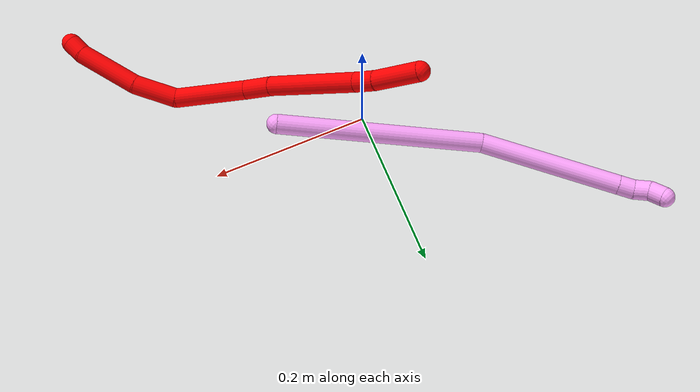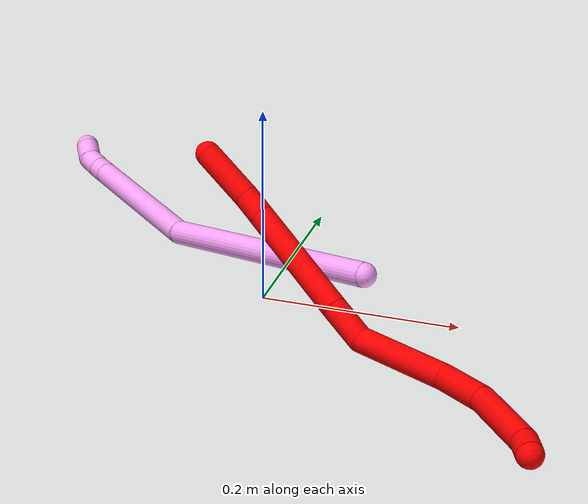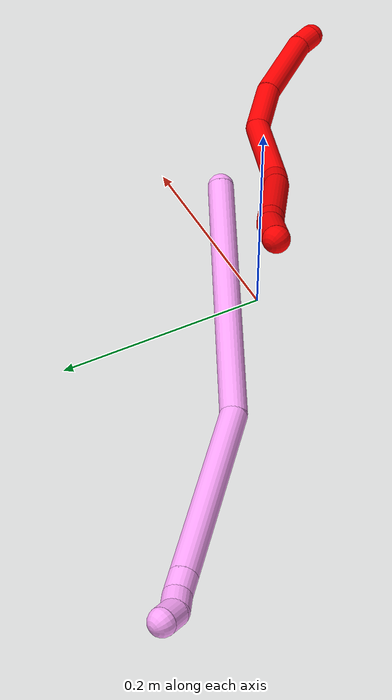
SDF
<sdf version="1.7">
 <world name="default">
  <model name="photoneo_s_sensor">
   <static>1</static>
   <pose>0 0 2 1.57079 1.57079 3.14159</pose>
   <link name="link">
    <inertial><mass>0.1</mass></inertial>
    <sensor name="sensor" type="depth">
     <update_rate>30</update_rate>
     <camera>
      <horizontal_fov>1.22</horizontal_fov>
      <image><width>1920</width><height>1200</height><format>B8G8R8</format></image>
      <clip><near>0.1</near><far>4</far></clip>
      <depth_camera><output>points</output></depth_camera>
     </camera>
     <plugin name="camera_plugin" filename="libgazebo_ros_depth_camera.so">
      <baseline>0.2</baseline>
      <alwaysOn>1</alwaysOn>
      <updateRate>0.0</updateRate>
      <cameraName>camera_ir</cameraName>
      <imageTopicName>/camera/color/image_raw</imageTopicName>
      <cameraInfoTopicName>/camera/color/camera_info</cameraInfoTopicName>
      <depthImageTopicName>/camera/depth/image_raw</depthImageTopicName>
      <depthImageCameraInfoTopicName>/camera/depth/camera_info</depthImageCameraInfoTopicName>
      <pointCloudTopicName>/camera/depth/points</pointCloudTopicName>
      <frameName>fr_optical</frameName>
      <pointCloudCutoff>0.1</pointCloudCutoff>
      <pointCloudCutoffMax>2.0</pointCloudCutoffMax>
      <distortionK1>0</distortionK1>
      <distortionK2>0</distortionK2>
      <distortionK3>0</distortionK3>
      <distortionT1>0</distortionT1>
      <distortionT2>0</distortionT2>
      <CxPrime>0</CxPrime>
      <Cx>0</Cx>
      <Cy>0</Cy>
      <focalLength>0</focalLength>
      <hackBaseline>0</hackBaseline>
     </plugin>
    </sensor>
   </link>
  </model>
  <model name="bin">
   <static>1</static>
   <link name="bottom">
    <collision name="collision-bottom">
     <pose>0 0 -0.01 0 -0 0</pose>
     <geometry><box><size>0.8 0.6 0.02</size></box></geometry>
     <surface>
      <friction><ode><mu>100</mu><mu2>100</mu2></ode></friction>
      <contact><collide_bitmask>65535</collide_bitmask></contact>
     </surface>
    </collision>
   </link>
   <link name="west_wall">
    <collision name="collision-west_wall">
     <pose>-0.41 0 0.1 0 -0 0</pose>
     <geometry><box><size>0.02 0.6 0.2</size></box></geometry>
     <surface>
      <friction><ode><mu>100</mu><mu2>100</mu2></ode></friction>
      <contact><collide_bitmask>65535</collide_bitmask></contact>
     </surface>
    </collision>
   </link>
   <link name="east_wall">
    <collision name="collision-east_wall">
     <pose>0.41 0 0.1 0 -0 0</pose>
     <geometry><box><size>0.02 0.6 0.2</size></box></geometry>
     <surface>
      <friction><ode><mu>100</mu><mu2>100</mu2></ode></friction>
      <contact><collide_bitmask>65535</collide_bitmask></contact>
     </surface>
    </collision>
   </link>
   <link name="south_wall">
    <collision name="collision-south_wall">
     <pose>0 -0.31 0.1 0 -0 0</pose>
     <geometry><box><size>0.8 0.02 0.2</size></box></geometry>
     <surface>
      <friction><ode><mu>100</mu><mu2>100</mu2></ode></friction>
      <contact><collide_bitmask>65535</collide_bitmask></contact>
     </surface>
    </collision>
   </link>
   <link name="north_wall">
    <collision name="collision-north_wall">
     <pose>0 0.31 0.1 0 -0 0</pose>
     <geometry><box><size>0.8 0.02 0.2</size></box></geometry>
     <surface>
      <friction><ode><mu>100</mu><mu2>100</mu2></ode></friction>
      <contact><collide_bitmask>65535</collide_bitmask></contact>
     </surface>
    </collision>
   </link>
  </model>
  <model name="2">
   <static>0</static>
   <link name="2">
    <collision name="collision-cylinder-e_1_1_4">
     <pose>0.000207 -0.000899 -0.010814 3.05861 0.019089 0.451964</pose>
     <geometry><cylinder><radius>0.0125</radius><length>0.021707</length></cylinder></geometry>
     <surface>
      <friction><ode><mu>1.16</mu><mu2>1.16</mu2><slip1>0</slip1><slip2>0</slip2></ode></friction>
      <contact><ode><kp>1e+06</kp><kd>1</kd><max_vel>0</max_vel><min_depth>0.001</min_depth></ode></contact>
     </surface>
    </collision>
    <visual name="visual-cylinder-e_1_1_4">
     <pose>0.000207 -0.000899 -0.010814 3.05861 0.019089 0.451964</pose>
     <geometry><cylinder><radius>0.0125</radius><length>0.021707</length></cylinder></geometry>
     <material><ambient>1 0 0 1</ambient></material>
    </visual>
    <collision name="collision-cylinder-e_2_4_5">
     <pose>-0.007591 2.9e-05 -0.06159 -3.09588 -0.197515 2.68808</pose>
     <geometry><cylinder><radius>0.0125</radius><length>0.081594</length></cylinder></geometry>
     <surface>
      <friction><ode><mu>1.16</mu><mu2>1.16</mu2><slip1>0</slip1><slip2>0</slip2></ode></friction>
      <contact><ode><kp>1e+06</kp><kd>1</kd><max_vel>0</max_vel><min_depth>0.001</min_depth></ode></contact>
     </surface>
    </collision>
    <visual name="visual-cylinder-e_2_4_5">
     <pose>-0.007591 2.9e-05 -0.06159 -3.09588 -0.197515 2.68808</pose>
     <geometry><cylinder><radius>0.0125</radius><length>0.081594</length></cylinder></geometry>
     <material><ambient>1 0 0 1</ambient></material>
    </visual>
    <collision name="collision-cylinder-e_3_5_6">
     <pose>-0.026356 0.005935 -0.127106 -2.98334 -0.394007 2.3853</pose>
     <geometry><cylinder><radius>0.0125</radius><length>0.05605</length></cylinder></geometry>
     <surface>
      <friction><ode><mu>1.16</mu><mu2>1.16</mu2><slip1>0</slip1><slip2>0</slip2></ode></friction>
      <contact><ode><kp>1e+06</kp><kd>1</kd><max_vel>0</max_vel><min_depth>0.001</min_depth></ode></contact>
     </surface>
    </collision>
    <visual name="visual-cylinder-e_3_5_6">
     <pose>-0.026356 0.005935 -0.127106 -2.98334 -0.394007 2.3853</pose>
     <geometry><cylinder><radius>0.0125</radius><length>0.05605</length></cylinder></geometry>
     <material><ambient>1 0 0 1</ambient></material>
    </visual>
    <collision name="collision-cylinder-e_4_6_7">
     <pose>-0.060918 0.032777 -0.184661 -2.52329 -0.54492 1.43744</pose>
     <geometry><cylinder><radius>0.0125</radius><length>0.091843</length></cylinder></geometry>
     <surface>
      <friction><ode><mu>1.16</mu><mu2>1.16</mu2><slip1>0</slip1><slip2>0</slip2></ode></friction>
      <contact><ode><kp>1e+06</kp><kd>1</kd><max_vel>0</max_vel><min_depth>0.001</min_depth></ode></contact>
     </surface>
    </collision>
    <visual name="visual-cylinder-e_4_6_7">
     <pose>-0.060918 0.032777 -0.184661 -2.52329 -0.54492 1.43744</pose>
     <geometry><cylinder><radius>0.0125</radius><length>0.091843</length></cylinder></geometry>
     <material><ambient>1 0 0 1</ambient></material>
    </visual>
    <collision name="collision-cylinder-e_5_7_8">
     <pose>-0.086897 0.069499 -0.231062 -2.37182 -0.108085 0.265505</pose>
     <geometry><cylinder><radius>0.0125</radius><length>0.040348</length></cylinder></geometry>
     <surface>
      <friction><ode><mu>1.16</mu><mu2>1.16</mu2><slip1>0</slip1><slip2>0</slip2></ode></friction>
      <contact><ode><kp>1e+06</kp><kd>1</kd><max_vel>0</max_vel><min_depth>0.001</min_depth></ode></contact>
     </surface>
    </collision>
    <visual name="visual-cylinder-e_5_7_8">
     <pose>-0.086897 0.069499 -0.231062 -2.37182 -0.108085 0.265505</pose>
     <geometry><cylinder><radius>0.0125</radius><length>0.040348</length></cylinder></geometry>
     <material><ambient>1 0 0 1</ambient></material>
    </visual>
    <collision name="collision-cylinder-e_6_8_9">
     <pose>-0.095307 0.121921 -0.292414 -2.45522 -0.102347 0.284735</pose>
     <geometry><cylinder><radius>0.0125</radius><length>0.122027</length></cylinder></geometry>
     <surface>
      <friction><ode><mu>1.16</mu><mu2>1.16</mu2><slip1>0</slip1><slip2>0</slip2></ode></friction>
      <contact><ode><kp>1e+06</kp><kd>1</kd><max_vel>0</max_vel><min_depth>0.001</min_depth></ode></contact>
     </surface>
    </collision>
    <visual name="visual-cylinder-e_6_8_9">
     <pose>-0.095307 0.121921 -0.292414 -2.45522 -0.102347 0.284735</pose>
     <geometry><cylinder><radius>0.0125</radius><length>0.122027</length></cylinder></geometry>
     <material><ambient>1 0 0 1</ambient></material>
    </visual>
    <collision name="collision-cylinder-e_7_9_10">
     <pose>-0.102844 0.169094 -0.349294 -2.42163 -0.098377 0.260109</pose>
     <geometry><cylinder><radius>0.0125</radius><length>0.026544</length></cylinder></geometry>
     <surface>
      <friction><ode><mu>1.16</mu><mu2>1.16</mu2><slip1>0</slip1><slip2>0</slip2></ode></friction>
      <contact><ode><kp>1e+06</kp><kd>1</kd><max_vel>0</max_vel><min_depth>0.001</min_depth></ode></contact>
     </surface>
    </collision>
    <visual name="visual-cylinder-e_7_9_10">
     <pose>-0.102844 0.169094 -0.349294 -2.42163 -0.098377 0.260109</pose>
     <geometry><cylinder><radius>0.0125</radius><length>0.026544</length></cylinder></geometry>
     <material><ambient>1 0 0 1</ambient></material>
    </visual>
    <collision name="collision-cylinder-e_8_10_2">
     <pose>-0.108429 0.199494 -0.379418 -2.32047 -0.143455 0.327173</pose>
     <geometry><cylinder><radius>0.0125</radius><length>0.059887</length></cylinder></geometry>
     <surface>
      <friction><ode><mu>1.16</mu><mu2>1.16</mu2><slip1>0</slip1><slip2>0</slip2></ode></friction>
      <contact><ode><kp>1e+06</kp><kd>1</kd><max_vel>0</max_vel><min_depth>0.001</min_depth></ode></contact>
     </surface>
    </collision>
    <visual name="visual-cylinder-e_8_10_2">
     <pose>-0.108429 0.199494 -0.379418 -2.32047 -0.143455 0.327173</pose>
     <geometry><cylinder><radius>0.0125</radius><length>0.059887</length></cylinder></geometry>
     <material><ambient>1 0 0 1</ambient></material>
    </visual>
    <collision name="collision-sphere-2">
     <pose>-0.112709 0.221185 -0.399612 0 -0 0</pose>
     <geometry><sphere><radius>0.0125</radius></sphere></geometry>
     <surface>
      <friction><ode><mu>1.16</mu><mu2>1.16</mu2><slip1>0</slip1><slip2>0</slip2></ode></friction>
      <contact><ode><kp>1e+06</kp><kd>1</kd><max_vel>0</max_vel><min_depth>0.001</min_depth></ode></contact>
     </surface>
    </collision>
    <visual name="visual-sphere-2">
     <pose>-0.112709 0.221185 -0.399612 0 -0 0</pose>
     <geometry><sphere><radius>0.0125</radius></sphere></geometry>
     <material><ambient>1 0 0 1</ambient></material>
    </visual>
    <collision name="collision-sphere-10">
     <pose>-0.104148 0.177803 -0.359224 0 -0 0</pose>
     <geometry><sphere><radius>0.0125</radius></sphere></geometry>
     <surface>
      <friction><ode><mu>1.16</mu><mu2>1.16</mu2><slip1>0</slip1><slip2>0</slip2></ode></friction>
      <contact><ode><kp>1e+06</kp><kd>1</kd><max_vel>0</max_vel><min_depth>0.001</min_depth></ode></contact>
     </surface>
    </collision>
    <visual name="visual-sphere-10">
     <pose>-0.104148 0.177803 -0.359224 0 -0 0</pose>
     <geometry><sphere><radius>0.0125</radius></sphere></geometry>
     <material><ambient>1 0 0 1</ambient></material>
    </visual>
    <collision name="collision-sphere-9">
     <pose>-0.101541 0.160386 -0.339364 0 -0 0</pose>
     <geometry><sphere><radius>0.0125</radius></sphere></geometry>
     <surface>
      <friction><ode><mu>1.16</mu><mu2>1.16</mu2><slip1>0</slip1><slip2>0</slip2></ode></friction>
      <contact><ode><kp>1e+06</kp><kd>1</kd><max_vel>0</max_vel><min_depth>0.001</min_depth></ode></contact>
     </surface>
    </collision>
    <visual name="visual-sphere-9">
     <pose>-0.101541 0.160386 -0.339364 0 -0 0</pose>
     <geometry><sphere><radius>0.0125</radius></sphere></geometry>
     <material><ambient>1 0 0 1</ambient></material>
    </visual>
    <collision name="collision-sphere-4">
     <pose>0.000414 -0.001799 -0.021628 0 -0 0</pose>
     <geometry><sphere><radius>0.0125</radius></sphere></geometry>
     <surface>
      <friction><ode><mu>1.16</mu><mu2>1.16</mu2><slip1>0</slip1><slip2>0</slip2></ode></friction>
      <contact><ode><kp>1e+06</kp><kd>1</kd><max_vel>0</max_vel><min_depth>0.001</min_depth></ode></contact>
     </surface>
    </collision>
    <visual name="visual-sphere-4">
     <pose>0.000414 -0.001799 -0.021628 0 -0 0</pose>
     <geometry><sphere><radius>0.0125</radius></sphere></geometry>
     <material><ambient>1 0 0 1</ambient></material>
    </visual>
    <collision name="collision-sphere-1">
     <geometry><sphere><radius>0.0125</radius></sphere></geometry>
     <surface>
      <friction><ode><mu>1.16</mu><mu2>1.16</mu2><slip1>0</slip1><slip2>0</slip2></ode></friction>
      <contact><ode><kp>1e+06</kp><kd>1</kd><max_vel>0</max_vel><min_depth>0.001</min_depth></ode></contact>
     </surface>
    </collision>
    <visual name="visual-sphere-1">
     <geometry><sphere><radius>0.0125</radius></sphere></geometry>
     <material><ambient>1 0 0 1</ambient></material>
    </visual>
    <collision name="collision-sphere-8">
     <pose>-0.089073 0.083457 -0.245464 0 -0 0</pose>
     <geometry><sphere><radius>0.0125</radius></sphere></geometry>
     <surface>
      <friction><ode><mu>1.16</mu><mu2>1.16</mu2><slip1>0</slip1><slip2>0</slip2></ode></friction>
      <contact><ode><kp>1e+06</kp><kd>1</kd><max_vel>0</max_vel><min_depth>0.001</min_depth></ode></contact>
     </surface>
    </collision>
    <visual name="visual-sphere-8">
     <pose>-0.089073 0.083457 -0.245464 0 -0 0</pose>
     <geometry><sphere><radius>0.0125</radius></sphere></geometry>
     <material><ambient>1 0 0 1</ambient></material>
    </visual>
    <collision name="collision-sphere-5">
     <pose>-0.015597 0.001857 -0.101552 0 -0 0</pose>
     <geometry><sphere><radius>0.0125</radius></sphere></geometry>
     <surface>
      <friction><ode><mu>1.16</mu><mu2>1.16</mu2><slip1>0</slip1><slip2>0</slip2></ode></friction>
      <contact><ode><kp>1e+06</kp><kd>1</kd><max_vel>0</max_vel><min_depth>0.001</min_depth></ode></contact>
     </surface>
    </collision>
    <visual name="visual-sphere-5">
     <pose>-0.015597 0.001857 -0.101552 0 -0 0</pose>
     <geometry><sphere><radius>0.0125</radius></sphere></geometry>
     <material><ambient>1 0 0 1</ambient></material>
    </visual>
    <collision name="collision-sphere-6">
     <pose>-0.037114 0.010013 -0.152661 0 -0 0</pose>
     <geometry><sphere><radius>0.0125</radius></sphere></geometry>
     <surface>
      <friction><ode><mu>1.16</mu><mu2>1.16</mu2><slip1>0</slip1><slip2>0</slip2></ode></friction>
      <contact><ode><kp>1e+06</kp><kd>1</kd><max_vel>0</max_vel><min_depth>0.001</min_depth></ode></contact>
     </surface>
    </collision>
    <visual name="visual-sphere-6">
     <pose>-0.037114 0.010013 -0.152661 0 -0 0</pose>
     <geometry><sphere><radius>0.0125</radius></sphere></geometry>
     <material><ambient>1 0 0 1</ambient></material>
    </visual>
    <collision name="collision-sphere-7">
     <pose>-0.084721 0.05554 -0.216661 0 -0 0</pose>
     <geometry><sphere><radius>0.0125</radius></sphere></geometry>
     <surface>
      <friction><ode><mu>1.16</mu><mu2>1.16</mu2><slip1>0</slip1><slip2>0</slip2></ode></friction>
      <contact><ode><kp>1e+06</kp><kd>1</kd><max_vel>0</max_vel><min_depth>0.001</min_depth></ode></contact>
     </surface>
    </collision>
    <visual name="visual-sphere-7">
     <pose>-0.084721 0.05554 -0.216661 0 -0 0</pose>
     <geometry><sphere><radius>0.0125</radius></sphere></geometry>
     <material><ambient>1 0 0 1</ambient></material>
    </visual>
    <inertial>
     <pose>-0.064093 0.074887 -0.212687 0 -0 0</pose>
     <mass>0.5</mass>
     <inertia>
      <ixx>0.000266</ixx>
      <ixy>0</ixy>
      <ixz>0</ixz>
      <iyy>9.6e-05</iyy>
      <iyz>0</iyz>
      <izz>-0.000118</izz>
     </inertia>
    </inertial>
   </link>
   <pose>0.312313 -0.236883 0.024609 1.58474 -0.636872 0.453565</pose>
  </model>
  <model name="4">
   <static>0</static>
   <link name="4">
    <collision name="collision-cylinder-e_1_1_4">
     <pose>-0.086527 0.047067 0.086096 -0.500288 -0.722687 0.192526</pose>
     <geometry><cylinder><radius>0.0125</radius><length>0.261647</length></cylinder></geometry>
     <surface>
      <friction><ode><mu>1.16</mu><mu2>1.16</mu2><slip1>0</slip1><slip2>0</slip2></ode></friction>
      <contact><ode><kp>1e+06</kp><kd>1</kd><max_vel>0</max_vel><min_depth>0.001</min_depth></ode></contact>
     </surface>
    </collision>
    <visual name="visual-cylinder-e_1_1_4">
     <pose>-0.086527 0.047067 0.086096 -0.500288 -0.722687 0.192526</pose>
     <geometry><cylinder><radius>0.0125</radius><length>0.261647</length></cylinder></geometry>
     <material><ambient>1 0.65098 0.996078 1</ambient></material>
    </visual>
    <collision name="collision-cylinder-e_2_4_5">
     <pose>-0.216765 0.109852 0.248286 -0.203701 -0.512436 0.053537</pose>
     <geometry><cylinder><radius>0.0125</radius><length>0.178302</length></cylinder></geometry>
     <surface>
      <friction><ode><mu>1.16</mu><mu2>1.16</mu2><slip1>0</slip1><slip2>0</slip2></ode></friction>
      <contact><ode><kp>1e+06</kp><kd>1</kd><max_vel>0</max_vel><min_depth>0.001</min_depth></ode></contact>
     </surface>
    </collision>
    <visual name="visual-cylinder-e_2_4_5">
     <pose>-0.216765 0.109852 0.248286 -0.203701 -0.512436 0.053537</pose>
     <geometry><cylinder><radius>0.0125</radius><length>0.178302</length></cylinder></geometry>
     <material><ambient>1 0.65098 0.996078 1</ambient></material>
    </visual>
    <collision name="collision-cylinder-e_3_5_6">
     <pose>-0.265389 0.127339 0.332931 -0.203908 -0.512502 0.053599</pose>
     <geometry><cylinder><radius>0.0125</radius><length>0.02004</length></cylinder></geometry>
     <surface>
      <friction><ode><mu>1.16</mu><mu2>1.16</mu2><slip1>0</slip1><slip2>0</slip2></ode></friction>
      <contact><ode><kp>1e+06</kp><kd>1</kd><max_vel>0</max_vel><min_depth>0.001</min_depth></ode></contact>
     </surface>
    </collision>
    <visual name="visual-cylinder-e_3_5_6">
     <pose>-0.265389 0.127339 0.332931 -0.203908 -0.512502 0.053599</pose>
     <geometry><cylinder><radius>0.0125</radius><length>0.02004</length></cylinder></geometry>
     <material><ambient>1 0.65098 0.996078 1</ambient></material>
    </visual>
    <collision name="collision-cylinder-e_4_6_7">
     <pose>-0.276732 0.128636 0.349129 0.061471 -0.698222 -0.022383</pose>
     <geometry><cylinder><radius>0.0125</radius><length>0.020002</length></cylinder></geometry>
     <surface>
      <friction><ode><mu>1.16</mu><mu2>1.16</mu2><slip1>0</slip1><slip2>0</slip2></ode></friction>
      <contact><ode><kp>1e+06</kp><kd>1</kd><max_vel>0</max_vel><min_depth>0.001</min_depth></ode></contact>
     </surface>
    </collision>
    <visual name="visual-cylinder-e_4_6_7">
     <pose>-0.276732 0.128636 0.349129 0.061471 -0.698222 -0.022383</pose>
     <geometry><cylinder><radius>0.0125</radius><length>0.020002</length></cylinder></geometry>
     <material><ambient>1 0.65098 0.996078 1</ambient></material>
    </visual>
    <collision name="collision-cylinder-e_5_7_2">
     <pose>-0.285996 0.125107 0.365869 0.324494 -0.287297 -0.047344</pose>
     <geometry><cylinder><radius>0.0125</radius><length>0.020009</length></cylinder></geometry>
     <surface>
      <friction><ode><mu>1.16</mu><mu2>1.16</mu2><slip1>0</slip1><slip2>0</slip2></ode></friction>
      <contact><ode><kp>1e+06</kp><kd>1</kd><max_vel>0</max_vel><min_depth>0.001</min_depth></ode></contact>
     </surface>
    </collision>
    <visual name="visual-cylinder-e_5_7_2">
     <pose>-0.285996 0.125107 0.365869 0.324494 -0.287297 -0.047344</pose>
     <geometry><cylinder><radius>0.0125</radius><length>0.020009</length></cylinder></geometry>
     <material><ambient>1 0.65098 0.996078 1</ambient></material>
    </visual>
    <collision name="collision-sphere-2">
     <pose>-0.288831 0.122048 0.374963 0 -0 0</pose>
     <geometry><sphere><radius>0.0125</radius></sphere></geometry>
     <surface>
      <friction><ode><mu>1.16</mu><mu2>1.16</mu2><slip1>0</slip1><slip2>0</slip2></ode></friction>
      <contact><ode><kp>1e+06</kp><kd>1</kd><max_vel>0</max_vel><min_depth>0.001</min_depth></ode></contact>
     </surface>
    </collision>
    <visual name="visual-sphere-2">
     <pose>-0.288831 0.122048 0.374963 0 -0 0</pose>
     <geometry><sphere><radius>0.0125</radius></sphere></geometry>
     <material><ambient>1 0.65098 0.996078 1</ambient></material>
    </visual>
    <collision name="collision-sphere-7">
     <pose>-0.283161 0.128166 0.356775 0 -0 0</pose>
     <geometry><sphere><radius>0.0125</radius></sphere></geometry>
     <surface>
      <friction><ode><mu>1.16</mu><mu2>1.16</mu2><slip1>0</slip1><slip2>0</slip2></ode></friction>
      <contact><ode><kp>1e+06</kp><kd>1</kd><max_vel>0</max_vel><min_depth>0.001</min_depth></ode></contact>
     </surface>
    </collision>
    <visual name="visual-sphere-7">
     <pose>-0.283161 0.128166 0.356775 0 -0 0</pose>
     <geometry><sphere><radius>0.0125</radius></sphere></geometry>
     <material><ambient>1 0.65098 0.996078 1</ambient></material>
    </visual>
    <collision name="collision-sphere-6">
     <pose>-0.270303 0.129107 0.341483 0 -0 0</pose>
     <geometry><sphere><radius>0.0125</radius></sphere></geometry>
     <surface>
      <friction><ode><mu>1.16</mu><mu2>1.16</mu2><slip1>0</slip1><slip2>0</slip2></ode></friction>
      <contact><ode><kp>1e+06</kp><kd>1</kd><max_vel>0</max_vel><min_depth>0.001</min_depth></ode></contact>
     </surface>
    </collision>
    <visual name="visual-sphere-6">
     <pose>-0.270303 0.129107 0.341483 0 -0 0</pose>
     <geometry><sphere><radius>0.0125</radius></sphere></geometry>
     <material><ambient>1 0.65098 0.996078 1</ambient></material>
    </visual>
    <collision name="collision-sphere-5">
     <pose>-0.260476 0.12557 0.324379 0 -0 0</pose>
     <geometry><sphere><radius>0.0125</radius></sphere></geometry>
     <surface>
      <friction><ode><mu>1.16</mu><mu2>1.16</mu2><slip1>0</slip1><slip2>0</slip2></ode></friction>
      <contact><ode><kp>1e+06</kp><kd>1</kd><max_vel>0</max_vel><min_depth>0.001</min_depth></ode></contact>
     </surface>
    </collision>
    <visual name="visual-sphere-5">
     <pose>-0.260476 0.12557 0.324379 0 -0 0</pose>
     <geometry><sphere><radius>0.0125</radius></sphere></geometry>
     <material><ambient>1 0.65098 0.996078 1</ambient></material>
    </visual>
    <collision name="collision-sphere-1">
     <geometry><sphere><radius>0.0125</radius></sphere></geometry>
     <surface>
      <friction><ode><mu>1.16</mu><mu2>1.16</mu2><slip1>0</slip1><slip2>0</slip2></ode></friction>
      <contact><ode><kp>1e+06</kp><kd>1</kd><max_vel>0</max_vel><min_depth>0.001</min_depth></ode></contact>
     </surface>
    </collision>
    <visual name="visual-sphere-1">
     <geometry><sphere><radius>0.0125</radius></sphere></geometry>
     <material><ambient>1 0.65098 0.996078 1</ambient></material>
    </visual>
    <collision name="collision-sphere-4">
     <pose>-0.173054 0.094134 0.172192 0 -0 0</pose>
     <geometry><sphere><radius>0.0125</radius></sphere></geometry>
     <surface>
      <friction><ode><mu>1.16</mu><mu2>1.16</mu2><slip1>0</slip1><slip2>0</slip2></ode></friction>
      <contact><ode><kp>1e+06</kp><kd>1</kd><max_vel>0</max_vel><min_depth>0.001</min_depth></ode></contact>
     </surface>
    </collision>
    <visual name="visual-sphere-4">
     <pose>-0.173054 0.094134 0.172192 0 -0 0</pose>
     <geometry><sphere><radius>0.0125</radius></sphere></geometry>
     <material><ambient>1 0.65098 0.996078 1</ambient></material>
    </visual>
    <inertial>
     <pose>-0.15573 0.07906 0.175545 0 -0 0</pose>
     <mass>0.5</mass>
     <inertia>
      <ixx>0.001743</ixx>
      <ixy>0</ixy>
      <ixz>0</ixz>
      <iyy>0.002109</iyy>
      <iyz>0</iyz>
      <izz>0.000635</izz>
     </inertia>
    </inertial>
   </link>
   <pose>0.108193 -0.017208 0.05171 -1.49022 0.220348 0.326184</pose>
  </model>
 </world>
</sdf>
